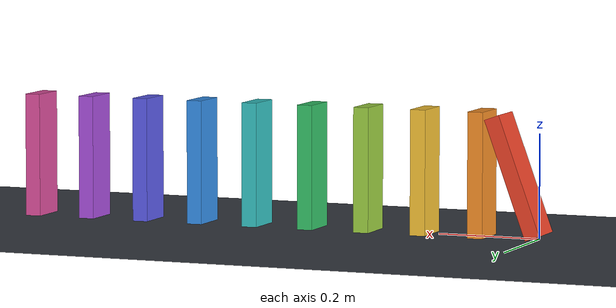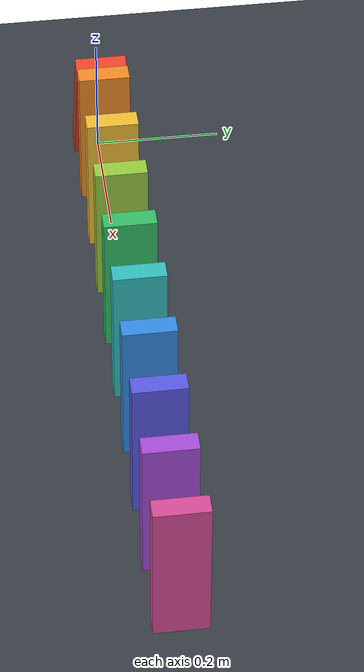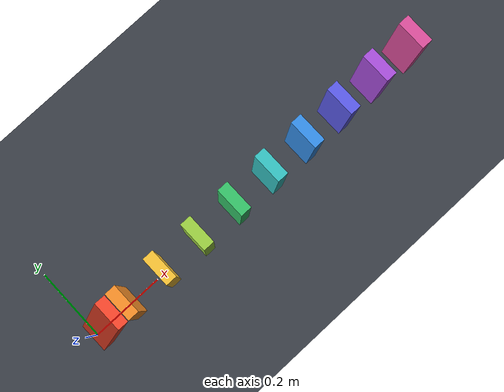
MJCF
<mujoco model="ten_domino_cascade">
  <compiler angle="degree"/>
  <option timestep="0.002" gravity="0 0 -9.81" integrator="implicitfast" solver="Newton" iterations="100"/>

  <worldbody>
    <light name="overhead" pos="0.5 -0.5 2" dir="0 0 -1"/>
    <geom name="floor" type="plane" pos="0 0 0" size="2 1 0.1" friction="0.8 0.005 0.0001" solref="0.008 1" solimp="0.95 0.99 0.001" rgba="0.22 0.24 0.27 1"/>

    <!-- Domino 1 leans 20 degrees toward +x, with its lower leading edge on the floor. Gravity starts the cascade. -->
    <body name="domino1" pos="0.041947 0 0.117894" quat="0.984807753 0 0.173648178 0">
      <freejoint/>
      <geom name="domino1_geom" type="box" size="0.015 0.04 0.12" mass="0.08" friction="0.8 0.005 0.0001" solref="0.008 1" solimp="0.95 0.99 0.001" rgba="0.9 0.25 0.15 1"/>
    </body>

    <body name="domino2" pos="0.115 0 0.12">
      <freejoint/>
      <geom name="domino2_geom" type="box" size="0.015 0.04 0.12" mass="0.08" friction="0.8 0.005 0.0001" solref="0.008 1" solimp="0.95 0.99 0.001" rgba="0.95 0.55 0.15 1"/>
    </body>

    <body name="domino3" pos="0.230 0 0.12">
      <freejoint/>
      <geom name="domino3_geom" type="box" size="0.015 0.04 0.12" mass="0.08" friction="0.8 0.005 0.0001" solref="0.008 1" solimp="0.95 0.99 0.001" rgba="0.95 0.75 0.2 1"/>
    </body>

    <body name="domino4" pos="0.345 0 0.12">
      <freejoint/>
      <geom name="domino4_geom" type="box" size="0.015 0.04 0.12" mass="0.08" friction="0.8 0.005 0.0001" solref="0.008 1" solimp="0.95 0.99 0.001" rgba="0.6 0.8 0.25 1"/>
    </body>

    <body name="domino5" pos="0.460 0 0.12">
      <freejoint/>
      <geom name="domino5_geom" type="box" size="0.015 0.04 0.12" mass="0.08" friction="0.8 0.005 0.0001" solref="0.008 1" solimp="0.95 0.99 0.001" rgba="0.2 0.75 0.4 1"/>
    </body>

    <body name="domino6" pos="0.575 0 0.12">
      <freejoint/>
      <geom name="domino6_geom" type="box" size="0.015 0.04 0.12" mass="0.08" friction="0.8 0.005 0.0001" solref="0.008 1" solimp="0.95 0.99 0.001" rgba="0.2 0.75 0.75 1"/>
    </body>

    <body name="domino7" pos="0.690 0 0.12">
      <freejoint/>
      <geom name="domino7_geom" type="box" size="0.015 0.04 0.12" mass="0.08" friction="0.8 0.005 0.0001" solref="0.008 1" solimp="0.95 0.99 0.001" rgba="0.2 0.55 0.9 1"/>
    </body>

    <body name="domino8" pos="0.805 0 0.12">
      <freejoint/>
      <geom name="domino8_geom" type="box" size="0.015 0.04 0.12" mass="0.08" friction="0.8 0.005 0.0001" solref="0.008 1" solimp="0.95 0.99 0.001" rgba="0.35 0.35 0.9 1"/>
    </body>

    <body name="domino9" pos="0.920 0 0.12">
      <freejoint/>
      <geom name="domino9_geom" type="box" size="0.015 0.04 0.12" mass="0.08" friction="0.8 0.005 0.0001" solref="0.008 1" solimp="0.95 0.99 0.001" rgba="0.65 0.3 0.85 1"/>
    </body>

    <body name="domino10" pos="1.035 0 0.12">
      <freejoint/>
      <geom name="domino10_geom" type="box" size="0.015 0.04 0.12" mass="0.08" friction="0.8 0.005 0.0001" solref="0.008 1" solimp="0.95 0.99 0.001" rgba="0.85 0.3 0.6 1"/>
    </body>
  </worldbody>

  <keyframe>
    <key name="start"/>
  </keyframe>
</mujoco>
